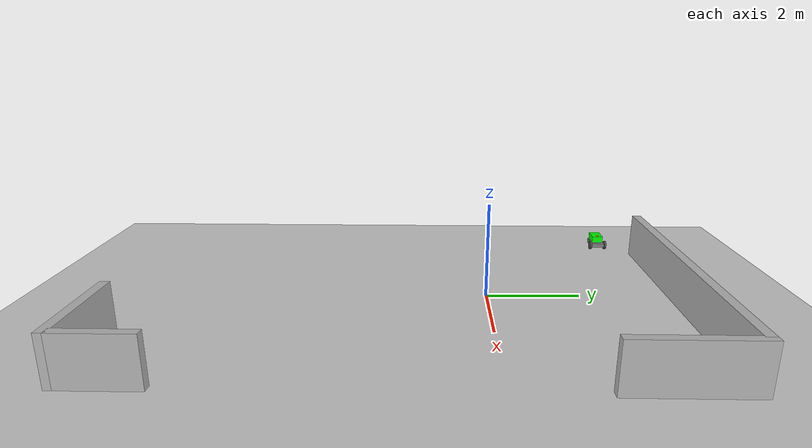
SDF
<sdf version="1.6">
 <world name="default">
  <scene><shadows>0</shadows></scene>
  <include><uri>model://ground_plane</uri></include>
  <include><uri>model://asphalt_plane</uri></include>
  <include><uri>model://sun</uri></include>
  <model name="wall_left">
   <pose>0.6 4.0 0.5 0 0 0</pose>
   <static>true</static>
   <link name="link">
    <collision name="collision"><geometry><box><size>7.5 0.2 1.0</size></box></geometry></collision>
    <visual name="visual"><geometry><box><size>7.5 0.2 1.0</size></box></geometry></visual>
   </link>
  </model>
  <model name="wall_front_1">
   <pose>4.4 2.9 0.5 0 0 0</pose>
   <static>true</static>
   <link name="link">
    <collision name="collision"><geometry><box><size>0.2 2.4 1.0</size></box></geometry></collision>
    <visual name="visual"><geometry><box><size>0.2 2.4 1.0</size></box></geometry></visual>
   </link>
  </model>
  <model name="wall_front_2">
   <pose>4.4 -6.5 0.5 0 0 0</pose>
   <static>true</static>
   <link name="link">
    <collision name="collision"><geometry><box><size>0.2 1.5 1.0</size></box></geometry></collision>
    <visual name="visual"><geometry><box><size>0.2 1.5 1.0</size></box></geometry></visual>
   </link>
  </model>
  <model name="wall_right">
   <pose>3.3 -7.3 0.5 0 0 0</pose>
   <static>true</static>
   <link name="link">
    <collision name="collision"><geometry><box><size>2.4 0.2 1.0</size></box></geometry></collision>
    <visual name="visual"><geometry><box><size>2.4 0.2 1.0</size></box></geometry></visual>
   </link>
  </model>
  <model name="vehicle">
   <pose>-3.0 3.0 0.325 0 -0 0</pose>
   <link name="chassis">
    <inertial>
     <mass>1.14395</mass>
     <inertia>
      <ixx>0.126164</ixx>
      <ixy>0</ixy>
      <ixz>0</ixz>
      <iyy>0.416519</iyy>
      <iyz>0</iyz>
      <izz>0.481014</izz>
     </inertia>
    </inertial>
    <visual name="visual">
     <geometry><box><size>0.5 0.3 0.1</size></box></geometry>
     <material><ambient>0.4 0.4 0.4 1</ambient><diffuse>0.5 0.5 0.5 1</diffuse></material>
    </visual>
    <collision name="collision"><geometry><box><size>0.5 0.3 0.1</size></box></geometry></collision>
   </link>
   <link name="cover">
    <pose>-0.05 0 0.125 0 -0 0</pose>
    <inertial>
     <mass>1.14395</mass>
     <inertia>
      <ixx>0.126164</ixx>
      <ixy>0</ixy>
      <ixz>0</ixz>
      <iyy>0.416519</iyy>
      <iyz>0</iyz>
      <izz>0.481014</izz>
     </inertia>
    </inertial>
    <visual name="visual">
     <geometry><box><size>0.4 0.25 0.15</size></box></geometry>
     <material><ambient>0 1 0 1</ambient><diffuse>0 1 0 1</diffuse></material>
    </visual>
    <collision name="collision"><geometry><box><size>0.4 0.25 0.15</size></box></geometry></collision>
   </link>
   <link name="left_wheel">
    <pose>0.2 0.175 0.0 -1.5707 0 0</pose>
    <inertial>
     <mass>2</mass>
     <inertia><ixx>0.145833</ixx><ixy>0</ixy><ixz>0</ixz><iyy>0.145833</iyy><iyz>0</iyz><izz>0.125</izz></inertia>
    </inertial>
    <visual name="visual">
     <geometry><cylinder><length>0.05</length><radius>0.1</radius></cylinder></geometry>
     <material><ambient>0 0 0 1</ambient><diffuse>0.3 0.3 0.3 1</diffuse></material>
    </visual>
    <collision name="collision">
     <geometry><cylinder><length>0.05</length><radius>0.1</radius></cylinder></geometry>
     <surface>
      <friction><ode><mu>1</mu><mu2>1</mu2><slip1>0</slip1><slip2>0</slip2></ode></friction>
      <contact>
       <ode>
        <soft_cfm>0</soft_cfm>
        <soft_erp>0.2</soft_erp>
        <kp>1e+13</kp>
        <kd>1</kd>
        <max_vel>0.01</max_vel>
        <min_depth>0.01</min_depth>
       </ode>
      </contact>
     </surface>
    </collision>
   </link>
   <link name="right_wheel">
    <pose>0.2 -0.175 0.0 -1.5707 0 0</pose>
    <inertial>
     <mass>2</mass>
     <inertia><ixx>0.145833</ixx><ixy>0</ixy><ixz>0</ixz><iyy>0.145833</iyy><iyz>0</iyz><izz>0.125</izz></inertia>
    </inertial>
    <visual name="visual">
     <geometry><cylinder><length>0.05</length><radius>0.1</radius></cylinder></geometry>
     <material><ambient>0 0 0 1</ambient><diffuse>0.3 0.3 0.3 1</diffuse></material>
    </visual>
    <collision name="collision">
     <geometry><cylinder><length>0.05</length><radius>0.1</radius></cylinder></geometry>
     <surface>
      <friction><ode><mu>1</mu><mu2>1</mu2><slip1>0</slip1><slip2>0</slip2></ode></friction>
      <contact>
       <ode>
        <soft_cfm>0</soft_cfm>
        <soft_erp>0.2</soft_erp>
        <kp>1e+13</kp>
        <kd>1</kd>
        <max_vel>0.01</max_vel>
        <min_depth>0.01</min_depth>
       </ode>
      </contact>
     </surface>
    </collision>
   </link>
   <link name="caster">
    <pose>-0.15 -0 -0.05 0 -0 0</pose>
    <inertial>
     <mass>1</mass>
     <inertia><ixx>0.1</ixx><ixy>0</ixy><ixz>0</ixz><iyy>0.1</iyy><iyz>0</iyz><izz>0.1</izz></inertia>
    </inertial>
    <visual name="visual">
     <geometry><sphere><radius>0.05</radius></sphere></geometry>
     <material><ambient>0 0 0 1</ambient><diffuse>0.3 0.3 0.3 1</diffuse></material>
    </visual>
    <collision name="collision"><geometry><sphere><radius>0.05</radius></sphere></geometry></collision>
   </link>
   <link name="distance_sensor">
    <pose>0.125 0 0.21 0 -0 0</pose>
    <visual name="visual_box">
     <geometry><cylinder><length>0.03</length><radius>0.025</radius></cylinder></geometry>
     <material><ambient>0.7 0.7 0 1</ambient><diffuse>0.7 0.7 0 1</diffuse></material>
    </visual>
    <collision name="collision_box">
     <geometry><cylinder><length>0.05</length><radius>0.05</radius></cylinder></geometry>
     <laser_retro>100.0</laser_retro>
    </collision>
    <sensor name="sensor_ray_front" type="ray">
     <ray>
      <scan>
       <horizontal>
        <samples>2</samples>
        <resolution>1.0</resolution>
        <min_angle>-0.001</min_angle>
        <max_angle>0.001</max_angle>
       </horizontal>
      </scan>
      <range><min>0.1</min><max>10.0</max><resolution>0.02</resolution></range>
      <noise><type>gaussian</type><mean>0</mean><stddev>0.01</stddev></noise>
     </ray>
     <always_on>true</always_on>
     <update_rate>30.0</update_rate>
     <plugin name="range" filename="libgazebo_ros_ray_sensor.so">
      <ros><namespace>/jetbot</namespace><remapping>~/out:=laser_front</remapping></ros>
      <output_type>sensor_msgs/Range</output_type>
     </plugin>
    </sensor>
    <sensor name="sensor_ray_side" type="ray">
     <pose>0.125 0 0.225 0 -0 1.5708</pose>
     <ray>
      <scan>
       <horizontal>
        <samples>2</samples>
        <resolution>1.0</resolution>
        <min_angle>-0.001</min_angle>
        <max_angle>0.001</max_angle>
       </horizontal>
      </scan>
      <range><min>0.1</min><max>10.0</max><resolution>0.02</resolution></range>
      <noise><type>gaussian</type><mean>0</mean><stddev>0.01</stddev></noise>
     </ray>
     <always_on>true</always_on>
     <update_rate>30.0</update_rate>
     <plugin name="range" filename="libgazebo_ros_ray_sensor.so">
      <ros><namespace>/jetbot</namespace><remapping>~/out:=laser_side</remapping></ros>
      <output_type>sensor_msgs/Range</output_type>
     </plugin>
    </sensor>
    <sensor type="camera" name="jetbot_camera">
     <pose>0.02 0 0 0 0 0</pose>
     <update_rate>30</update_rate>
     <visualize>0</visualize>
     <camera name="head">
      <horizontal_fov>0.8962634</horizontal_fov>
      <image><width>640</width><height>480</height><format>R8G8B8</format></image>
      <clip><near>0.02</near><far>300</far></clip>
      <noise><type>gaussian</type><mean>0.0</mean><stddev>0.007</stddev></noise>
     </camera>
     <plugin name="camera_controller" filename="libgazebo_ros_camera.so">
      <alwaysOn>true</alwaysOn>
      <updateRate>30.0</updateRate>
      <cameraName>jetbot_camera</cameraName>
      <imageTopicName>image_raw</imageTopicName>
      <cameraInfoTopicName>camera_info</cameraInfoTopicName>
      <frameName>camera_link</frameName>
      <hackBaseline>0.07</hackBaseline>
      <distortionK1>0.0</distortionK1>
      <distortionK2>0.0</distortionK2>
      <distortionK3>0.0</distortionK3>
      <distortionT1>0.0</distortionT1>
      <distortionT2>0.0</distortionT2>
     </plugin>
    </sensor>
   </link>
   <joint name="left_wheel_joint" type="revolute">
    <parent>chassis</parent>
    <child>left_wheel</child>
    <axis><xyz>0 0 1</xyz><limit><lower>-1.79769e+308</lower><upper>1.79769e+308</upper></limit></axis>
   </joint>
   <joint name="right_wheel_joint" type="revolute">
    <parent>chassis</parent>
    <child>right_wheel</child>
    <axis><xyz>0 0 1</xyz><limit><lower>-1.79769e+308</lower><upper>1.79769e+308</upper></limit></axis>
   </joint>
   <joint name="caster_wheel" type="ball"><parent>chassis</parent><child>caster</child></joint>
   <joint name="cover_joint" type="fixed"><parent>chassis</parent><child>cover</child></joint>
   <joint name="ray_front_joint" type="fixed"><parent>chassis</parent><child>distance_sensor</child></joint>
   <plugin name="diff_drive" filename="libgazebo_ros_diff_drive.so">
    <ros><namespace>/jetbot</namespace></ros>
    <left_joint>left_wheel_joint</left_joint>
    <right_joint>right_wheel_joint</right_joint>
    <wheel_separation>1.25</wheel_separation>
    <wheel_diameter>0.6</wheel_diameter>
    <max_wheel_torque>20</max_wheel_torque>
    <max_wheel_acceleration>1.0</max_wheel_acceleration>
    <publish_odom>true</publish_odom>
    <publish_odom_tf>true</publish_odom_tf>
    <publish_wheel_tf>true</publish_wheel_tf>
    <odometry_frame>map</odometry_frame>
    <robot_base_frame>chassis</robot_base_frame>
   </plugin>
  </model>
 </world>
</sdf>
